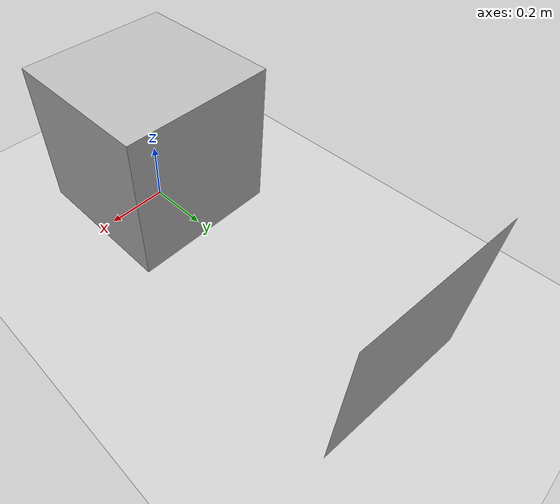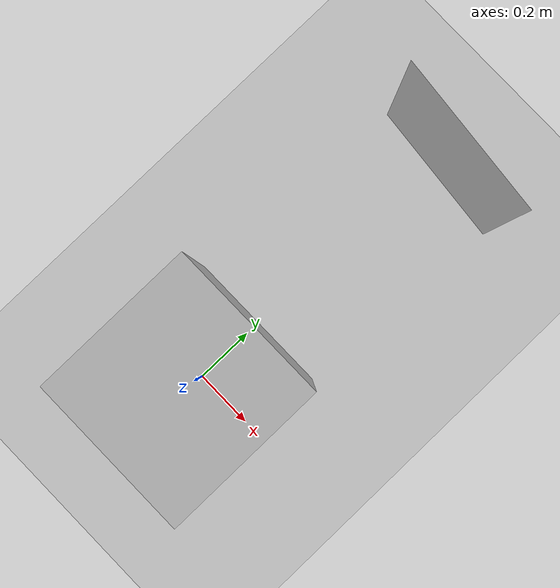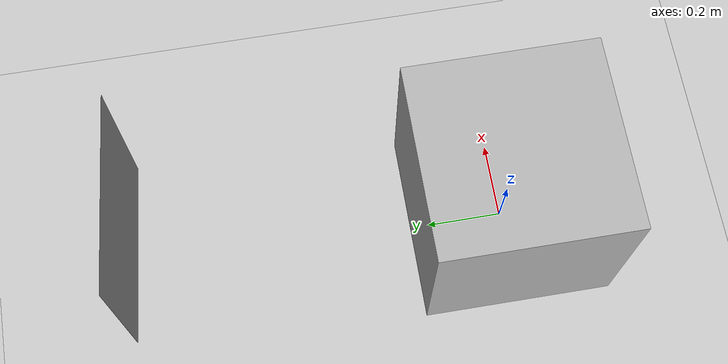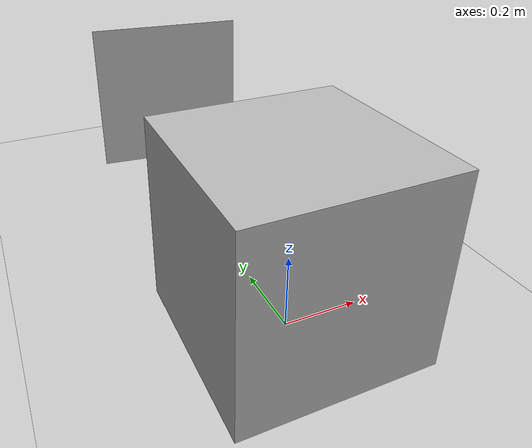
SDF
<?xml version="1.0"?>
<sdf version="1.5">
  <world name="default">

    <include>
      <uri>model://ground_plane</uri>
    </include>

    <include>
      <uri>model://sun</uri>
    </include>

    <include>
      <uri>model://aruco_visual_marker_26</uri>
      <pose>0.050 0.99875 0.25  0 0 -0.100066</pose>
    </include>

    <include>
      <uri>model://my_camera</uri>
      <pose>0 0 0.25  0 0 0</pose>
    </include>

  </world>
</sdf>

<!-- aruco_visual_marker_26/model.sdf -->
<sdf version="1.5">
  <model name="aruco_visual_marker_26">
    <pose>0 0 0 0 0 0</pose>
    <static>false</static>

    <link name="aruco_link_base">

      <visual name="visual">
        <geometry>
          <box>
            <size>0.5 0.000001 0.5</size>
          </box>
        </geometry>
        <material>
          <script>
            <uri>model://aruco_visual_marker_26/materials/scripts</uri>
            <uri>model://aruco_visual_marker_26/materials/textures</uri>
            <name>ArucoVisualMarker26/Marker</name>
          </script>
          <emissive>1 1 1 1</emissive>
        </material>
      </visual>

      <collision name="collision">
        <geometry>
          <box>
            <size>0.5 0.5 0.5</size>
          </box>
        </geometry>
      </collision>

    </link>

    <plugin name="aruco_move" filename="libgazebo_ros_planar_move.so">
      <commandTopic>aruco_cmd_vel</commandTopic>
      <odometryTopic>odom</odometryTopic>
      <odometryFrame>odom</odometryFrame>                         <!-- header frame id -->
      <robotBaseFrame>aruco_link_base</robotBaseFrame>            <!-- child  frame id -->
    </plugin>

  </model>
</sdf>

      <inertial>
        <mass>500</mass>
        <inertia> <!-- inertias are tricky to compute -->
          <!-- http://gazebosim.org/tutorials?tut=inertia&cat=build_robot -->
          <ixx>20.75</ixx>       <!-- for a box: ixx = 0.083 * mass * (y*y + z*z) -->
          <ixy>0</ixy>         <!-- for a box: ixy = 0 -->
          <ixz>0</ixz>         <!-- for a box: ixz = 0 -->
          <iyy>20.75</iyy>       <!-- for a box: iyy = 0.083 * mass * (x*x + z*z) -->
          <iyz>0</iyz>         <!-- for a box: iyz = 0 -->
          <izz>20.75</izz>       <!-- for a box: izz = 0.083 * mass * (x*x + y*y) -->
        </inertia>
      </inertial>

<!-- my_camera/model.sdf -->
<sdf version="1.5">
  <model name="my_camera">
    <pose>0 0 0 0 0 0</pose>
    <static>false</static>

    <link name="camera_link_base">

      <visual name="visual">
        <geometry>
          <box>
            <size>0.5 0.5 0.5</size>
          </box>
        </geometry>
      </visual>

      <collision name="collision">
        <geometry>
          <box>
            <size>0.5 0.5 0.5</size>
          </box>
        </geometry>
      </collision>

      <sensor name="camera_link_camera" type="camera">
        <pose>0 0 0 0 0 1.570796327</pose>

        <camera>
          <horizontal_fov>1.047197551</horizontal_fov>
          <image>
            <width>1920</width>
            <height>1080</height>
            <format>R8G8B8</format>
          </image>
        </camera>

        <always_on>1</always_on>
        <update_rate>30</update_rate>
        <visualize>true</visualize>

        <plugin name="camera_controller" filename="libgazebo_ros_camera.so">
          <cameraName>camera</cameraName>
          <imageTopicName>image_raw</imageTopicName>
          <cameraInfoTopicName>camera_info</cameraInfoTopicName>
          <odometryTopic>odom</odometryTopic>
          <odometryFrame>odom</odometryFrame>
          <frameName>camera_link_optical</frameName>
        </plugin>

      </sensor>

    </link>

    <!-- model plugin -->
    <plugin name="camera_move" filename="libgazebo_ros_planar_move.so">
      <commandTopic>camera_cmd_vel</commandTopic>
      <odometryTopic>odom</odometryTopic>
      <odometryFrame>odom</odometryFrame>                         <!-- header frame id -->
      <robotBaseFrame>camera_link_base</robotBaseFrame>           <!-- child  frame id -->
    </plugin>

  </model>
</sdf>

      <inertial>
        <mass>5000</mass>
        <inertia> <!-- inertias are tricky to compute -->
          <!-- http://gazebosim.org/tutorials?tut=inertia&cat=build_robot -->
          <ixx>207.5</ixx>       <!-- for a box: ixx = 0.083 * mass * (y*y + z*z) -->
          <ixy>0</ixy>         <!-- for a box: ixy = 0 -->
          <ixz>0</ixz>         <!-- for a box: ixz = 0 -->
          <iyy>207.5</iyy>       <!-- for a box: iyy = 0.083 * mass * (x*x + z*z) -->
          <iyz>0</iyz>         <!-- for a box: iyz = 0 -->
          <izz>207.5</izz>       <!-- for a box: izz = 0.083 * mass * (x*x + y*y) -->
        </inertia>
      </inertial>
